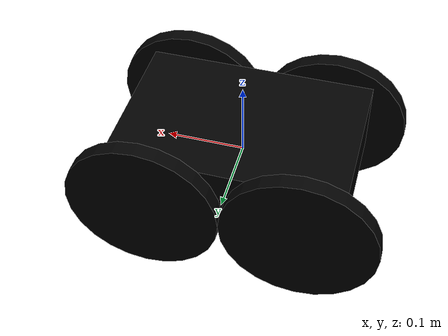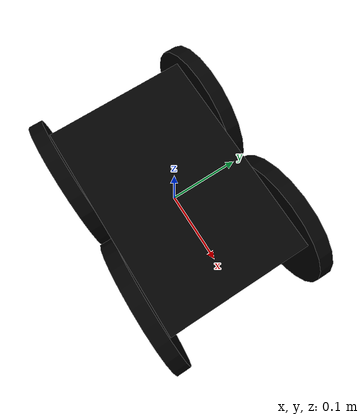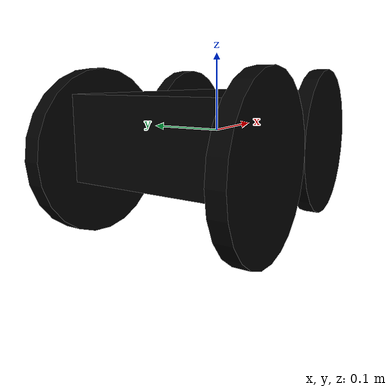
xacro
<?xml version="1.0"?>
<robot xmlns:xacro="http://www.ros.org/wiki/xacro" name="multi">

    <material name="black">
        <color rgba="0 0 0 1"/>
    </material>

    <link name="base_link">
    <visual>
        <origin xyz="0 0 0" rpy="0 0 0" />
        <geometry>
        <box size="0.3 0.2 0.1"/>
        </geometry>
        <material name="black"/>
    </visual>
    <collision>
        <geometry>
        <box size="0.3 0.2 0.1"/>
        </geometry>
    </collision>
    <inertial>
        <mass value="1"/>
        <inertia ixx="1.75e-2" iyy="4.17e-3" izz="1.08e-2" ixy="0" ixz="0" iyz="0"/>
    </inertial>
    </link>

    <link name="left_front_wheel">
    <visual>
        <geometry>
        <cylinder length="0.02" radius="0.1"/>
        </geometry>
        <origin rpy="1.57075 0 0" xyz="0 0 0"/>
        <material name="black"/>
    </visual>
    <collision>
        <geometry>
        <cylinder length="0.02" radius="0.1"/>
        </geometry>
        <origin rpy="1.57075 0 0" xyz="0 0 0"/>
    </collision>
    <inertial>
        <mass value="0.1"/>
        <inertia ixx="2.53e-4" iyy="2.53e-4" izz="5e-4" ixy="0" ixz="0" iyz="0"/>
    </inertial>
    </link>

    <joint name="left_front_wheel_joint" type="continuous">
    <axis rpy="0 0 0" xyz="0 1 0"/>
    <parent link="base_link"/>
    <child link="left_front_wheel"/>
    <origin rpy="0 0 0" xyz="0.1 0.11 -0.02"/>
    </joint>

    <link name="right_front_wheel">
    <visual>
        <geometry>
        <cylinder length="0.02" radius="0.1"/>
        </geometry>
        <origin rpy="1.57075 0 0" xyz="0 0 0"/>
        <material name="black"/>
    </visual>
    <collision>
        <geometry>
        <cylinder length="0.02" radius="0.1"/>
        </geometry>
        <origin rpy="1.57075 0 0" xyz="0 0 0"/>
    </collision>
    <inertial>
        <mass value="0.1"/>
        <inertia ixx="2.53e-4" iyy="2.53e-4" izz="5e-4" ixy="0" ixz="0" iyz="0"/>
    </inertial>
    </link>

    <joint name="right_front_wheel_joint" type="continuous">
    <axis rpy="0 0 0" xyz="0 1 0"/>
    <parent link="base_link"/>
    <child link="right_front_wheel"/>
    <origin rpy="0 0 0" xyz="0.1 -0.11 -0.02"/>
    </joint>

    <link name="left_back_wheel">
    <visual>
        <geometry>
        <cylinder length="0.02" radius="0.1"/>
        </geometry>
        <origin rpy="1.57075 0 0" xyz="0 0 0"/>
        <material name="black"/>
    </visual>
    <collision>
        <geometry>
        <cylinder length="0.02" radius="0.1"/>
        </geometry>
        <origin rpy="1.57075 0 0" xyz="0 0 0"/>
    </collision>
    <inertial>
        <mass value="0.1"/>
        <inertia ixx="2.53e-4" iyy="2.53e-4" izz="5e-4" ixy="0" ixz="0" iyz="0"/>
    </inertial>
    </link>

    <joint name="left_back_wheel_joint" type="continuous">
    <axis rpy="0 0 0" xyz="0 1 0"/>
    <parent link="base_link"/>
    <child link="left_back_wheel"/>
    <origin rpy="0 0 0" xyz="-0.1 0.11 -0.02"/>
    </joint>

    <link name="right_back_wheel">
    <visual>
        <geometry>
        <cylinder length="0.02" radius="0.1"/>
        </geometry>
        <origin rpy="1.57075 0 0" xyz="0 0 0"/>
        <material name="black"/>
    </visual>
    <collision>
        <geometry>
        <cylinder length="0.02" radius="0.1"/>
        </geometry>
        <origin rpy="1.57075 0 0" xyz="0 0 0"/>
    </collision>
    <inertial>
        <mass value="0.1"/>
        <inertia ixx="2.53e-4" iyy="2.53e-4" izz="5e-4" ixy="0" ixz="0" iyz="0"/>
    </inertial>
    </link>

    <joint name="right_back_wheel_joint" type="continuous">
    <axis rpy="0 0 0" xyz="0 1 0"/>
    <parent link="base_link"/>
    <child link="right_back_wheel"/>
    <origin rpy="0 0 0" xyz="-0.1 -0.11 -0.02"/>
    </joint>

</robot>
